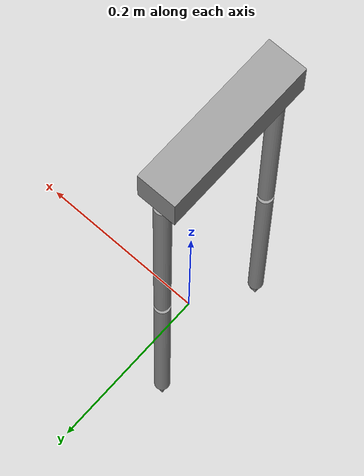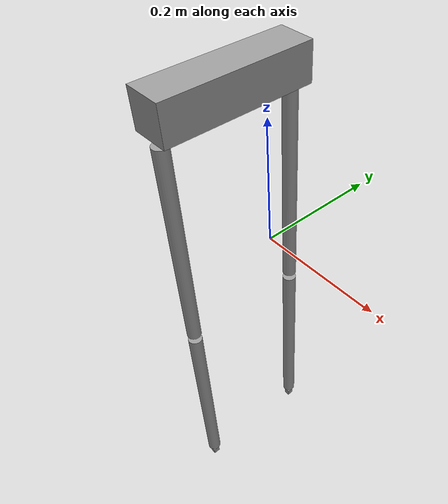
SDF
<?xml version='1.0'?>
<sdf version='1.6'>
  <model name='mylegs4'>
    <link name='link_0'>
      <pose frame=''>0.033944 -0.17347 0.101543 0 -0 0</pose>
      <inertial>
        <mass>1</mass>
        <inertia>
          <ixx>0.145833</ixx>
          <ixy>0</ixy>
          <ixz>0</ixz>
          <iyy>0.145833</iyy>
          <iyz>0</iyz>
          <izz>0.125</izz>
        </inertia>
        <pose frame=''>0 0 0 0 -0 0</pose>
      </inertial>
      <self_collide>0</self_collide>
      <kinematic>0</kinematic>
      <gravity>1</gravity>
      <visual name='visual'>
        <pose frame=''>0 0 0 0 -0 0</pose>
        <geometry>
          <cylinder>
            <radius>0.01</radius>
            <length>0.3</length>
          </cylinder>
        </geometry>
        <material>
          <lighting>1</lighting>
          <script>
            <uri>file://media/materials/scripts/gazebo.material</uri>
            <name>Gazebo/Grey</name>
          </script>
          <ambient>0.3 0.3 0.3 1</ambient>
          <diffuse>0.7 0.7 0.7 1</diffuse>
          <specular>0.01 0.01 0.01 1</specular>
          <emissive>0 0 0 1</emissive>
          <shader type='vertex'>
            <normal_map>__default__</normal_map>
          </shader>
        </material>
        <cast_shadows>1</cast_shadows>
        <transparency>0</transparency>
      </visual>
      <collision name='collision'>
        <laser_retro>0</laser_retro>
        <max_contacts>10</max_contacts>
        <pose frame=''>0 0 0 0 -0 0</pose>
        <geometry>
          <cylinder>
            <radius>0.01</radius>
            <length>0.3</length>
          </cylinder>
        </geometry>
        <surface>
          <friction>
            <ode>
              <mu>1</mu>
              <mu2>1</mu2>
              <fdir1>0 0 0</fdir1>
              <slip1>0</slip1>
              <slip2>0</slip2>
            </ode>
            <torsional>
              <coefficient>1</coefficient>
              <patch_radius>0</patch_radius>
              <surface_radius>0</surface_radius>
              <use_patch_radius>1</use_patch_radius>
              <ode>
                <slip>0</slip>
              </ode>
            </torsional>
          </friction>
          <bounce>
            <restitution_coefficient>0</restitution_coefficient>
            <threshold>1e+06</threshold>
          </bounce>
          <contact>
            <collide_without_contact>0</collide_without_contact>
            <collide_without_contact_bitmask>1</collide_without_contact_bitmask>
            <collide_bitmask>1</collide_bitmask>
            <ode>
              <soft_cfm>0</soft_cfm>
              <soft_erp>0.2</soft_erp>
              <kp>1e+13</kp>
              <kd>1</kd>
              <max_vel>0.01</max_vel>
              <min_depth>0</min_depth>
            </ode>
            <bullet>
              <split_impulse>1</split_impulse>
              <split_impulse_penetration_threshold>-0.01</split_impulse_penetration_threshold>
              <soft_cfm>0</soft_cfm>
              <soft_erp>0.2</soft_erp>
              <kp>1e+13</kp>
              <kd>1</kd>
            </bullet>
          </contact>
        </surface>
      </collision>
    </link>
    <link name='link_0_0'>
      <pose frame=''>0.033944 -0.17347 -0.373457 0 -0 0</pose>
      <inertial>
        <mass>1</mass>
        <inertia>
          <ixx>0.166667</ixx>
          <ixy>0</ixy>
          <ixz>0</ixz>
          <iyy>0.166667</iyy>
          <iyz>0</iyz>
          <izz>0.166667</izz>
        </inertia>
        <pose frame=''>0 0 0 0 -0 0</pose>
      </inertial>
      <self_collide>0</self_collide>
      <kinematic>0</kinematic>
      <gravity>1</gravity>
      <visual name='visual'>
        <pose frame=''>0 0 0 0 -0 0</pose>
        <geometry>
          <box>
            <size>0.01 0.01 0.01</size>
          </box>
        </geometry>
        <material>
          <lighting>1</lighting>
          <script>
            <uri>file://media/materials/scripts/gazebo.material</uri>
            <name>Gazebo/Grey</name>
          </script>
          <ambient>0.3 0.3 0.3 1</ambient>
          <diffuse>0.7 0.7 0.7 1</diffuse>
          <specular>0.01 0.01 0.01 1</specular>
          <emissive>0 0 0 1</emissive>
          <shader type='vertex'>
            <normal_map>__default__</normal_map>
          </shader>
        </material>
        <cast_shadows>1</cast_shadows>
        <transparency>0</transparency>
      </visual>
      <collision name='collision'>
        <laser_retro>0</laser_retro>
        <max_contacts>10</max_contacts>
        <pose frame=''>0 0 0 0 -0 0</pose>
        <geometry>
          <box>
            <size>0.01 0.01 0.01</size>
          </box>
        </geometry>
        <surface>
          <friction>
            <ode>
              <mu>1</mu>
              <mu2>1</mu2>
              <fdir1>0 0 0</fdir1>
              <slip1>0</slip1>
              <slip2>0</slip2>
            </ode>
            <torsional>
              <coefficient>1</coefficient>
              <patch_radius>0</patch_radius>
              <surface_radius>0</surface_radius>
              <use_patch_radius>1</use_patch_radius>
              <ode>
                <slip>0</slip>
              </ode>
            </torsional>
          </friction>
          <bounce>
            <restitution_coefficient>0</restitution_coefficient>
            <threshold>1e+06</threshold>
          </bounce>
          <contact>
            <collide_without_contact>0</collide_without_contact>
            <collide_without_contact_bitmask>1</collide_without_contact_bitmask>
            <collide_bitmask>1</collide_bitmask>
            <ode>
              <soft_cfm>0</soft_cfm>
              <soft_erp>0.2</soft_erp>
              <kp>1e+13</kp>
              <kd>1</kd>
              <max_vel>0.01</max_vel>
              <min_depth>0</min_depth>
            </ode>
            <bullet>
              <split_impulse>1</split_impulse>
              <split_impulse_penetration_threshold>-0.01</split_impulse_penetration_threshold>
              <soft_cfm>0</soft_cfm>
              <soft_erp>0.2</soft_erp>
              <kp>1e+13</kp>
              <kd>1</kd>
            </bullet>
          </contact>
        </surface>
      </collision>
    </link>
    <link name='link_1'>
      <pose frame=''>0.033944 -0.17347 -0.208457 0 -0 0</pose>
      <inertial>
        <mass>1</mass>
        <inertia>
          <ixx>0.145833</ixx>
          <ixy>0</ixy>
          <ixz>0</ixz>
          <iyy>0.145833</iyy>
          <iyz>0</iyz>
          <izz>0.125</izz>
        </inertia>
        <pose frame=''>0 0 0 0 -0 0</pose>
      </inertial>
      <self_collide>0</self_collide>
      <kinematic>0</kinematic>
      <gravity>1</gravity>
      <visual name='visual'>
        <pose frame=''>0 0 0 0 -0 0</pose>
        <geometry>
          <cylinder>
            <radius>0.01</radius>
            <length>0.3</length>
          </cylinder>
        </geometry>
        <material>
          <lighting>1</lighting>
          <script>
            <uri>file://media/materials/scripts/gazebo.material</uri>
            <name>Gazebo/Grey</name>
          </script>
          <ambient>0.3 0.3 0.3 1</ambient>
          <diffuse>0.7 0.7 0.7 1</diffuse>
          <specular>0.01 0.01 0.01 1</specular>
          <emissive>0 0 0 1</emissive>
          <shader type='vertex'>
            <normal_map>__default__</normal_map>
          </shader>
        </material>
        <cast_shadows>1</cast_shadows>
        <transparency>0</transparency>
      </visual>
      <collision name='collision'>
        <laser_retro>0</laser_retro>
        <max_contacts>10</max_contacts>
        <pose frame=''>0 0 0 0 -0 0</pose>
        <geometry>
          <cylinder>
            <radius>0.01</radius>
            <length>0.3</length>
          </cylinder>
        </geometry>
        <surface>
          <friction>
            <ode>
              <mu>1</mu>
              <mu2>1</mu2>
              <fdir1>0 0 0</fdir1>
              <slip1>0</slip1>
              <slip2>0</slip2>
            </ode>
            <torsional>
              <coefficient>1</coefficient>
              <patch_radius>0</patch_radius>
              <surface_radius>0</surface_radius>
              <use_patch_radius>1</use_patch_radius>
              <ode>
                <slip>0</slip>
              </ode>
            </torsional>
          </friction>
          <bounce>
            <restitution_coefficient>0</restitution_coefficient>
            <threshold>1e+06</threshold>
          </bounce>
          <contact>
            <collide_without_contact>0</collide_without_contact>
            <collide_without_contact_bitmask>1</collide_without_contact_bitmask>
            <collide_bitmask>1</collide_bitmask>
            <ode>
              <soft_cfm>0</soft_cfm>
              <soft_erp>0.2</soft_erp>
              <kp>1e+13</kp>
              <kd>1</kd>
              <max_vel>0.01</max_vel>
              <min_depth>0</min_depth>
            </ode>
            <bullet>
              <split_impulse>1</split_impulse>
              <split_impulse_penetration_threshold>-0.01</split_impulse_penetration_threshold>
              <soft_cfm>0</soft_cfm>
              <soft_erp>0.2</soft_erp>
              <kp>1e+13</kp>
              <kd>1</kd>
            </bullet>
          </contact>
        </surface>
      </collision>
    </link>
    <link name='link_1_0'>
      <pose frame=''>0.033944 0.00653 -0.373457 0 -0 0</pose>
      <inertial>
        <mass>1</mass>
        <inertia>
          <ixx>0.166667</ixx>
          <ixy>0</ixy>
          <ixz>0</ixz>
          <iyy>0.166667</iyy>
          <iyz>0</iyz>
          <izz>0.166667</izz>
        </inertia>
        <pose frame=''>0 0 0 0 -0 0</pose>
      </inertial>
      <self_collide>0</self_collide>
      <kinematic>0</kinematic>
      <gravity>1</gravity>
      <visual name='visual'>
        <pose frame=''>0 0 0 0 -0 0</pose>
        <geometry>
          <box>
            <size>0.01 0.01 0.01</size>
          </box>
        </geometry>
        <material>
          <lighting>1</lighting>
          <script>
            <uri>file://media/materials/scripts/gazebo.material</uri>
            <name>Gazebo/Grey</name>
          </script>
          <ambient>0.3 0.3 0.3 1</ambient>
          <diffuse>0.7 0.7 0.7 1</diffuse>
          <specular>0.01 0.01 0.01 1</specular>
          <emissive>0 0 0 1</emissive>
          <shader type='vertex'>
            <normal_map>__default__</normal_map>
          </shader>
        </material>
        <cast_shadows>1</cast_shadows>
        <transparency>0</transparency>
      </visual>
      <collision name='collision'>
        <laser_retro>0</laser_retro>
        <max_contacts>10</max_contacts>
        <pose frame=''>0 0 0 0 -0 0</pose>
        <geometry>
          <box>
            <size>0.01 0.01 0.01</size>
          </box>
        </geometry>
        <surface>
          <friction>
            <ode>
              <mu>1</mu>
              <mu2>1</mu2>
              <fdir1>0 0 0</fdir1>
              <slip1>0</slip1>
              <slip2>0</slip2>
            </ode>
            <torsional>
              <coefficient>1</coefficient>
              <patch_radius>0</patch_radius>
              <surface_radius>0</surface_radius>
              <use_patch_radius>1</use_patch_radius>
              <ode>
                <slip>0</slip>
              </ode>
            </torsional>
          </friction>
          <bounce>
            <restitution_coefficient>0</restitution_coefficient>
            <threshold>1e+06</threshold>
          </bounce>
          <contact>
            <collide_without_contact>0</collide_without_contact>
            <collide_without_contact_bitmask>1</collide_without_contact_bitmask>
            <collide_bitmask>1</collide_bitmask>
            <ode>
              <soft_cfm>0</soft_cfm>
              <soft_erp>0.2</soft_erp>
              <kp>1e+13</kp>
              <kd>1</kd>
              <max_vel>0.01</max_vel>
              <min_depth>0</min_depth>
            </ode>
            <bullet>
              <split_impulse>1</split_impulse>
              <split_impulse_penetration_threshold>-0.01</split_impulse_penetration_threshold>
              <soft_cfm>0</soft_cfm>
              <soft_erp>0.2</soft_erp>
              <kp>1e+13</kp>
              <kd>1</kd>
            </bullet>
          </contact>
        </surface>
      </collision>
    </link>
    <link name='link_2'>
      <pose frame=''>0.033944 0.00653 0.101543 0 -0 0</pose>
      <inertial>
        <mass>1</mass>
        <inertia>
          <ixx>0.145833</ixx>
          <ixy>0</ixy>
          <ixz>0</ixz>
          <iyy>0.145833</iyy>
          <iyz>0</iyz>
          <izz>0.125</izz>
        </inertia>
        <pose frame=''>0 0 0 0 -0 0</pose>
      </inertial>
      <self_collide>0</self_collide>
      <kinematic>0</kinematic>
      <gravity>1</gravity>
      <visual name='visual'>
        <pose frame=''>0 0 0 0 -0 0</pose>
        <geometry>
          <cylinder>
            <radius>0.01</radius>
            <length>0.3</length>
          </cylinder>
        </geometry>
        <material>
          <lighting>1</lighting>
          <script>
            <uri>file://media/materials/scripts/gazebo.material</uri>
            <name>Gazebo/Grey</name>
          </script>
          <ambient>0.3 0.3 0.3 1</ambient>
          <diffuse>0.7 0.7 0.7 1</diffuse>
          <specular>0.01 0.01 0.01 1</specular>
          <emissive>0 0 0 1</emissive>
          <shader type='vertex'>
            <normal_map>__default__</normal_map>
          </shader>
        </material>
        <cast_shadows>1</cast_shadows>
        <transparency>0</transparency>
      </visual>
      <collision name='collision'>
        <laser_retro>0</laser_retro>
        <max_contacts>10</max_contacts>
        <pose frame=''>0 0 0 0 -0 0</pose>
        <geometry>
          <cylinder>
            <radius>0.01</radius>
            <length>0.3</length>
          </cylinder>
        </geometry>
        <surface>
          <friction>
            <ode>
              <mu>1</mu>
              <mu2>1</mu2>
              <fdir1>0 0 0</fdir1>
              <slip1>0</slip1>
              <slip2>0</slip2>
            </ode>
            <torsional>
              <coefficient>1</coefficient>
              <patch_radius>0</patch_radius>
              <surface_radius>0</surface_radius>
              <use_patch_radius>1</use_patch_radius>
              <ode>
                <slip>0</slip>
              </ode>
            </torsional>
          </friction>
          <bounce>
            <restitution_coefficient>0</restitution_coefficient>
            <threshold>1e+06</threshold>
          </bounce>
          <contact>
            <collide_without_contact>0</collide_without_contact>
            <collide_without_contact_bitmask>1</collide_without_contact_bitmask>
            <collide_bitmask>1</collide_bitmask>
            <ode>
              <soft_cfm>0</soft_cfm>
              <soft_erp>0.2</soft_erp>
              <kp>1e+13</kp>
              <kd>1</kd>
              <max_vel>0.01</max_vel>
              <min_depth>0</min_depth>
            </ode>
            <bullet>
              <split_impulse>1</split_impulse>
              <split_impulse_penetration_threshold>-0.01</split_impulse_penetration_threshold>
              <soft_cfm>0</soft_cfm>
              <soft_erp>0.2</soft_erp>
              <kp>1e+13</kp>
              <kd>1</kd>
            </bullet>
          </contact>
        </surface>
      </collision>
    </link>
    <link name='link_3'>
      <pose frame=''>0.033944 0.00653 -0.208457 0 -0 0</pose>
      <inertial>
        <mass>1</mass>
        <inertia>
          <ixx>0.145833</ixx>
          <ixy>0</ixy>
          <ixz>0</ixz>
          <iyy>0.145833</iyy>
          <iyz>0</iyz>
          <izz>0.125</izz>
        </inertia>
        <pose frame=''>0 0 0 0 -0 0</pose>
      </inertial>
      <self_collide>0</self_collide>
      <kinematic>0</kinematic>
      <gravity>1</gravity>
      <visual name='visual'>
        <pose frame=''>0 0 0 0 -0 0</pose>
        <geometry>
          <cylinder>
            <radius>0.01</radius>
            <length>0.3</length>
          </cylinder>
        </geometry>
        <material>
          <lighting>1</lighting>
          <script>
            <uri>file://media/materials/scripts/gazebo.material</uri>
            <name>Gazebo/Grey</name>
          </script>
          <ambient>0.3 0.3 0.3 1</ambient>
          <diffuse>0.7 0.7 0.7 1</diffuse>
          <specular>0.01 0.01 0.01 1</specular>
          <emissive>0 0 0 1</emissive>
          <shader type='vertex'>
            <normal_map>__default__</normal_map>
          </shader>
        </material>
        <cast_shadows>1</cast_shadows>
        <transparency>0</transparency>
      </visual>
      <collision name='collision'>
        <laser_retro>0</laser_retro>
        <max_contacts>10</max_contacts>
        <pose frame=''>0 0 0 0 -0 0</pose>
        <geometry>
          <cylinder>
            <radius>0.01</radius>
            <length>0.3</length>
          </cylinder>
        </geometry>
        <surface>
          <friction>
            <ode>
              <mu>1</mu>
              <mu2>1</mu2>
              <fdir1>0 0 0</fdir1>
              <slip1>0</slip1>
              <slip2>0</slip2>
            </ode>
            <torsional>
              <coefficient>1</coefficient>
              <patch_radius>0</patch_radius>
              <surface_radius>0</surface_radius>
              <use_patch_radius>1</use_patch_radius>
              <ode>
                <slip>0</slip>
              </ode>
            </torsional>
          </friction>
          <bounce>
            <restitution_coefficient>0</restitution_coefficient>
            <threshold>1e+06</threshold>
          </bounce>
          <contact>
            <collide_without_contact>0</collide_without_contact>
            <collide_without_contact_bitmask>1</collide_without_contact_bitmask>
            <collide_bitmask>1</collide_bitmask>
            <ode>
              <soft_cfm>0</soft_cfm>
              <soft_erp>0.2</soft_erp>
              <kp>1e+13</kp>
              <kd>1</kd>
              <max_vel>0.01</max_vel>
              <min_depth>0</min_depth>
            </ode>
            <bullet>
              <split_impulse>1</split_impulse>
              <split_impulse_penetration_threshold>-0.01</split_impulse_penetration_threshold>
              <soft_cfm>0</soft_cfm>
              <soft_erp>0.2</soft_erp>
              <kp>1e+13</kp>
              <kd>1</kd>
            </bullet>
          </contact>
        </surface>
      </collision>
    </link>
    <link name='link_4'>
      <pose frame=''>0.033944 -0.08347 0.286543 0 -0 0</pose>
      <inertial>
        <mass>1</mass>
        <inertia>
          <ixx>0.166667</ixx>
          <ixy>0</ixy>
          <ixz>0</ixz>
          <iyy>0.166667</iyy>
          <iyz>0</iyz>
          <izz>0.166667</izz>
        </inertia>
        <pose frame=''>0 0 0 0 -0 0</pose>
      </inertial>
      <self_collide>0</self_collide>
      <kinematic>0</kinematic>
      <visual name='visual'>
        <pose frame=''>0 0 0 0 -0 0</pose>
        <geometry>
          <box>
            <size>0.05 0.2 0.05</size>
          </box>
        </geometry>
        <material>
          <lighting>1</lighting>
          <script>
            <uri>file://media/materials/scripts/gazebo.material</uri>
            <name>Gazebo/Grey</name>
          </script>
          <ambient>0.3 0.3 0.3 1</ambient>
          <diffuse>0.7 0.7 0.7 1</diffuse>
          <specular>0.01 0.01 0.01 1</specular>
          <emissive>0 0 0 1</emissive>
          <shader type='vertex'>
            <normal_map>__default__</normal_map>
          </shader>
        </material>
        <cast_shadows>1</cast_shadows>
        <transparency>0</transparency>
      </visual>
      <collision name='collision'>
        <laser_retro>0</laser_retro>
        <max_contacts>10</max_contacts>
        <pose frame=''>0 0 0 0 -0 0</pose>
        <geometry>
          <box>
            <size>0.05 0.2 0.05</size>
          </box>
        </geometry>
        <surface>
          <friction>
            <ode>
              <mu>1</mu>
              <mu2>1</mu2>
              <fdir1>0 0 0</fdir1>
              <slip1>0</slip1>
              <slip2>0</slip2>
            </ode>
            <torsional>
              <coefficient>1</coefficient>
              <patch_radius>0</patch_radius>
              <surface_radius>0</surface_radius>
              <use_patch_radius>1</use_patch_radius>
              <ode>
                <slip>0</slip>
              </ode>
            </torsional>
          </friction>
          <bounce>
            <restitution_coefficient>0</restitution_coefficient>
            <threshold>1e+06</threshold>
          </bounce>
          <contact>
            <collide_without_contact>0</collide_without_contact>
            <collide_without_contact_bitmask>1</collide_without_contact_bitmask>
            <collide_bitmask>1</collide_bitmask>
            <ode>
              <soft_cfm>0</soft_cfm>
              <soft_erp>0.2</soft_erp>
              <kp>1e+13</kp>
              <kd>1</kd>
              <max_vel>0.01</max_vel>
              <min_depth>0</min_depth>
            </ode>
            <bullet>
              <split_impulse>1</split_impulse>
              <split_impulse_penetration_threshold>-0.01</split_impulse_penetration_threshold>
              <soft_cfm>0</soft_cfm>
              <soft_erp>0.2</soft_erp>
              <kp>1e+13</kp>
              <kd>1</kd>
            </bullet>
          </contact>
        </surface>
      </collision>
    </link>
    <joint name='link_0_JOINT_3' type='revolute'>
      <parent>link_0</parent>
      <child>link_1</child>
      <pose frame=''>0 0 0.15 0 -0 0</pose>
      <axis>
        <xyz>1 0 0</xyz>
        <use_parent_model_frame>0</use_parent_model_frame>
        <limit>
          <lower>-1.79769e+308</lower>
          <upper>1.79769e+308</upper>
          <effort>-1</effort>
          <velocity>-1</velocity>
        </limit>
        <dynamics>
          <spring_reference>0</spring_reference>
          <spring_stiffness>0</spring_stiffness>
          <damping>0</damping>
          <friction>0</friction>
        </dynamics>
      </axis>
      <physics>
        <ode>
          <limit>
            <cfm>0</cfm>
            <erp>0.2</erp>
          </limit>
          <suspension>
            <cfm>0</cfm>
            <erp>0.2</erp>
          </suspension>
        </ode>
      </physics>
    </joint>
    <joint name='link_1_JOINT_0' type='revolute'>
      <parent>link_1</parent>
      <child>link_0_0</child>
      <pose frame=''>0 0 0 0 -0 0</pose>
      <axis>
        <xyz>1 0 0</xyz>
        <use_parent_model_frame>0</use_parent_model_frame>
        <limit>
          <lower>-1.79769e+308</lower>
          <upper>1.79769e+308</upper>
          <effort>-1</effort>
          <velocity>-1</velocity>
        </limit>
        <dynamics>
          <spring_reference>0</spring_reference>
          <spring_stiffness>0</spring_stiffness>
          <damping>0</damping>
          <friction>0</friction>
        </dynamics>
      </axis>
      <physics>
        <ode>
          <limit>
            <cfm>0</cfm>
            <erp>0.2</erp>
          </limit>
          <suspension>
            <cfm>0</cfm>
            <erp>0.2</erp>
          </suspension>
        </ode>
      </physics>
    </joint>
    <joint name='link_2_JOINT_4' type='revolute'>
      <parent>link_2</parent>
      <child>link_3</child>
      <pose frame=''>0 0 0.15 0 -0 0</pose>
      <axis>
        <xyz>1 0 0</xyz>
        <use_parent_model_frame>0</use_parent_model_frame>
        <limit>
          <lower>-1.79769e+308</lower>
          <upper>1.79769e+308</upper>
          <effort>-1</effort>
          <velocity>-1</velocity>
        </limit>
        <dynamics>
          <spring_reference>0</spring_reference>
          <spring_stiffness>0</spring_stiffness>
          <damping>0</damping>
          <friction>0</friction>
        </dynamics>
      </axis>
      <physics>
        <ode>
          <limit>
            <cfm>0</cfm>
            <erp>0.2</erp>
          </limit>
          <suspension>
            <cfm>0</cfm>
            <erp>0.2</erp>
          </suspension>
        </ode>
      </physics>
    </joint>
    <joint name='link_3_JOINT_1' type='revolute'>
      <parent>link_3</parent>
      <child>link_1_0</child>
      <pose frame=''>0 0 0 0 -0 0</pose>
      <axis>
        <xyz>1 0 0</xyz>
        <use_parent_model_frame>0</use_parent_model_frame>
        <limit>
          <lower>-1.79769e+308</lower>
          <upper>1.79769e+308</upper>
          <effort>-1</effort>
          <velocity>-1</velocity>
        </limit>
        <dynamics>
          <spring_reference>0</spring_reference>
          <spring_stiffness>0</spring_stiffness>
          <damping>0</damping>
          <friction>0</friction>
        </dynamics>
      </axis>
      <physics>
        <ode>
          <limit>
            <cfm>0</cfm>
            <erp>0.2</erp>
          </limit>
          <suspension>
            <cfm>0</cfm>
            <erp>0.2</erp>
          </suspension>
        </ode>
      </physics>
    </joint>
    <joint name='link_4_JOINT_0' type='revolute'>
      <parent>link_4</parent>
      <child>link_0</child>
      <pose frame=''>0 0 0.15 0 -0 0</pose>
      <axis>
        <xyz>1 0 0</xyz>
        <use_parent_model_frame>0</use_parent_model_frame>
        <limit>
          <lower>-1.79769e+308</lower>
          <upper>1.79769e+308</upper>
          <effort>-1</effort>
          <velocity>-1</velocity>
        </limit>
        <dynamics>
          <spring_reference>0</spring_reference>
          <spring_stiffness>0</spring_stiffness>
          <damping>0</damping>
          <friction>0</friction>
        </dynamics>
      </axis>
      <physics>
        <ode>
          <limit>
            <cfm>0</cfm>
            <erp>0.2</erp>
          </limit>
          <suspension>
            <cfm>0</cfm>
            <erp>0.2</erp>
          </suspension>
        </ode>
      </physics>
    </joint>
    <joint name='link_4_JOINT_1' type='revolute'>
      <parent>link_4</parent>
      <child>link_2</child>
      <pose frame=''>0 0 0.15 0 -0 0</pose>
      <axis>
        <xyz>1 0 0</xyz>
        <use_parent_model_frame>0</use_parent_model_frame>
        <limit>
          <lower>-1.79769e+308</lower>
          <upper>1.79769e+308</upper>
          <effort>-1</effort>
          <velocity>-1</velocity>
        </limit>
        <dynamics>
          <spring_reference>0</spring_reference>
          <spring_stiffness>0</spring_stiffness>
          <damping>0</damping>
          <friction>0</friction>
        </dynamics>
      </axis>
      <physics>
        <ode>
          <limit>
            <cfm>0</cfm>
            <erp>0.2</erp>
          </limit>
          <suspension>
            <cfm>0</cfm>
            <erp>0.2</erp>
          </suspension>
        </ode>
      </physics>
    </joint>
    <static>0</static>
    <allow_auto_disable>1</allow_auto_disable>
  </model>
</sdf>
